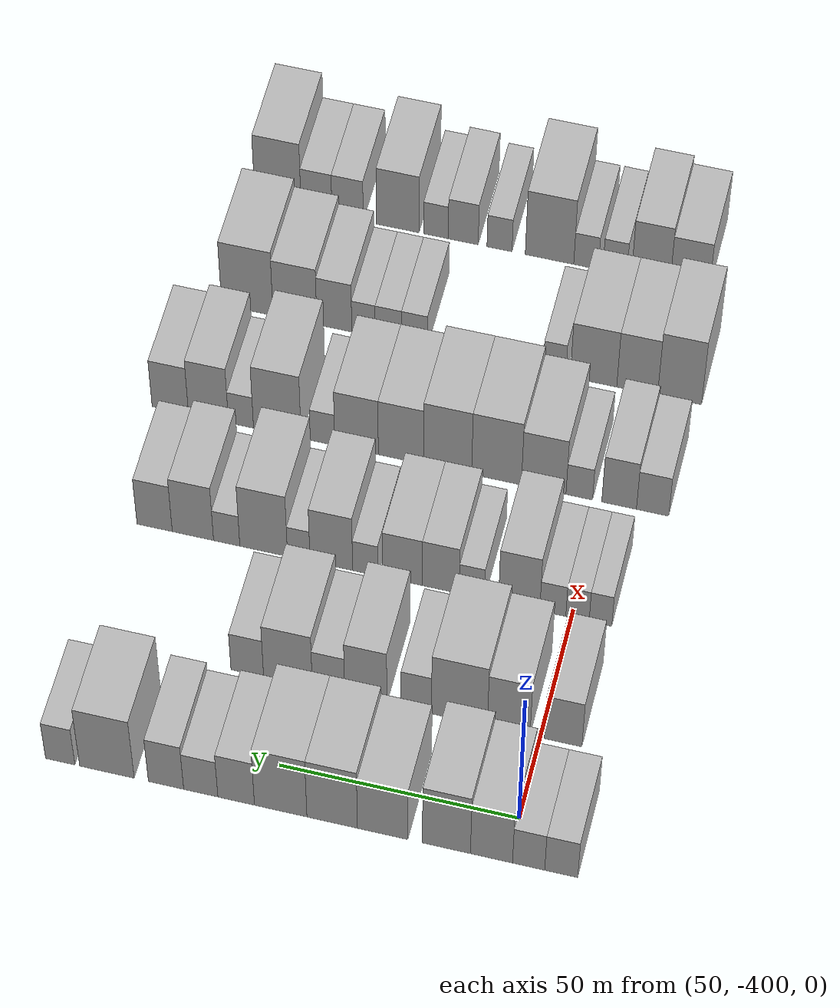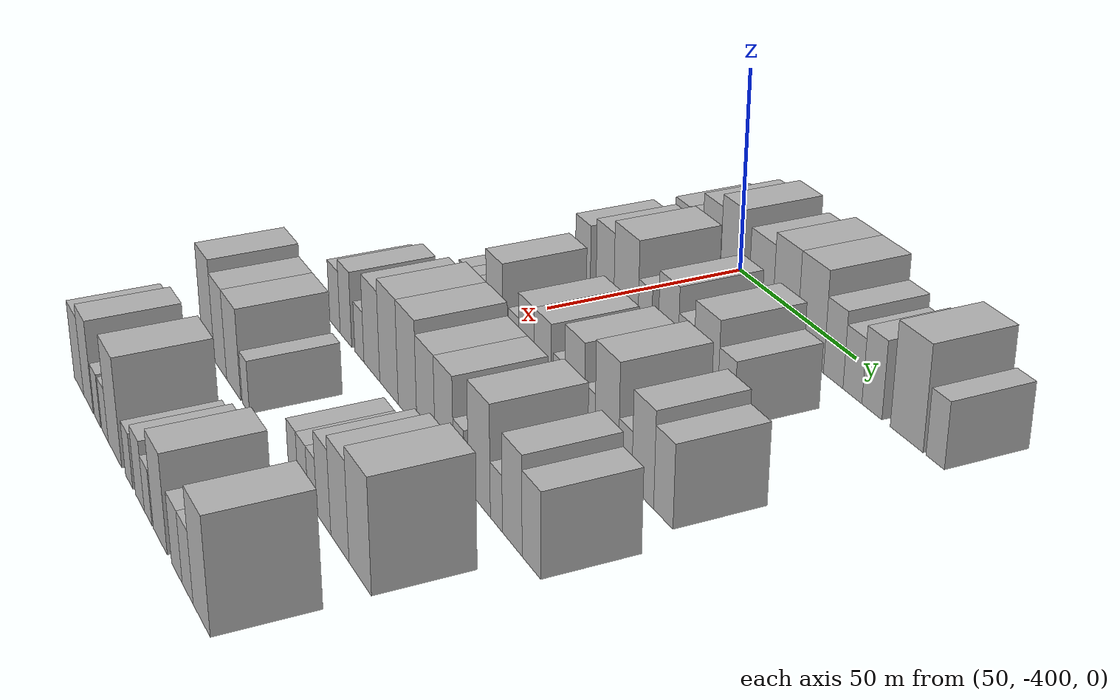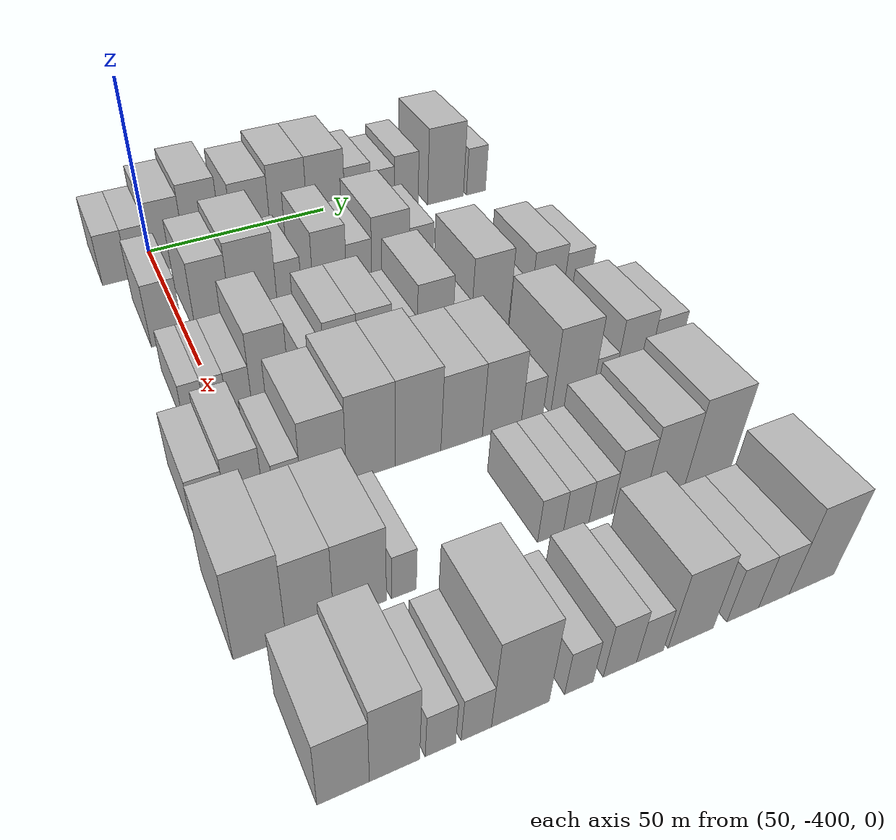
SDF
<sdf version="1.6">
 <world name="default">
  <model name="building_12">
   <static>1</static>
   <pose>50.0000 -411.0119 0 0.000000 0.000000 0.000000</pose>
   <link name="link">
    <pose>0 0 7.50 0 0 0</pose>
    <collision name="collision"><geometry><box><size>20.0000 6.7943 15.0000</size></box></geometry></collision>
    <visual name="visual">
     <cast_shadows>0</cast_shadows>
     <geometry><box><size>20.0000 6.7943 15.0000</size></box></geometry>
     <material>
      <script>
       <uri>model://HANNAS_wall/materials/scripts</uri>
       <uri>model://HANNAS_wall/materials/textures</uri>
       <name>vrc/HANNAS_wall</name>
      </script>
     </material>
    </visual>
   </link>
  </model>
  <model name="building_13">
   <static>1</static>
   <pose>50.0000 -404.2988 0 0.000000 0.000000 0.000000</pose>
   <link name="link">
    <pose>0 0 7.50 0 0 0</pose>
    <collision name="collision"><geometry><box><size>20.0000 6.6318 15.0000</size></box></geometry></collision>
    <visual name="visual">
     <cast_shadows>0</cast_shadows>
     <geometry><box><size>20.0000 6.6318 15.0000</size></box></geometry>
     <material>
      <script>
       <uri>model://HANNAS_wall/materials/scripts</uri>
       <uri>model://HANNAS_wall/materials/textures</uri>
       <name>vrc/HANNAS_wall</name>
      </script>
     </material>
    </visual>
   </link>
  </model>
  <model name="building_14">
   <static>1</static>
   <pose>50.0000 -396.6401 0 0.000000 0.000000 0.000000</pose>
   <link name="link">
    <pose>0 0 10.50 0 0 0</pose>
    <collision name="collision"><geometry><box><size>20.0000 8.6857 21.0000</size></box></geometry></collision>
    <visual name="visual">
     <cast_shadows>0</cast_shadows>
     <geometry><box><size>20.0000 8.6857 21.0000</size></box></geometry>
     <material>
      <script>
       <uri>model://HANNAS_wall/materials/scripts</uri>
       <uri>model://HANNAS_wall/materials/textures</uri>
       <name>vrc/HANNAS_wall</name>
      </script>
     </material>
    </visual>
   </link>
  </model>
  <model name="building_15">
   <static>1</static>
   <pose>50.0000 -387.3243 0 0.000000 0.000000 0.000000</pose>
   <link name="link">
    <pose>0 0 12.00 0 0 0</pose>
    <collision name="collision"><geometry><box><size>20.0000 9.9458 24.0000</size></box></geometry></collision>
    <visual name="visual">
     <cast_shadows>0</cast_shadows>
     <geometry><box><size>20.0000 9.9458 24.0000</size></box></geometry>
     <material>
      <script>
       <uri>model://HANNAS_wall/materials/scripts</uri>
       <uri>model://HANNAS_wall/materials/textures</uri>
       <name>vrc/HANNAS_wall</name>
      </script>
     </material>
    </visual>
   </link>
  </model>
  <model name="building_16">
   <static>1</static>
   <pose>50.0000 -374.1088 0 0.000000 0.000000 0.000000</pose>
   <link name="link">
    <pose>0 0 10.50 0 0 0</pose>
    <collision name="collision"><geometry><box><size>20.0000 10.4852 21.0000</size></box></geometry></collision>
    <visual name="visual">
     <cast_shadows>0</cast_shadows>
     <geometry><box><size>20.0000 10.4852 21.0000</size></box></geometry>
     <material>
      <script>
       <uri>model://HANNAS_wall/materials/scripts</uri>
       <uri>model://HANNAS_wall/materials/textures</uri>
       <name>vrc/HANNAS_wall</name>
      </script>
     </material>
    </visual>
   </link>
  </model>
  <model name="building_17">
   <static>1</static>
   <pose>50.0000 -363.6020 0 0.000000 0.000000 0.000000</pose>
   <link name="link">
    <pose>0 0 12.00 0 0 0</pose>
    <collision name="collision"><geometry><box><size>20.0000 10.5284 24.0000</size></box></geometry></collision>
    <visual name="visual">
     <cast_shadows>0</cast_shadows>
     <geometry><box><size>20.0000 10.5284 24.0000</size></box></geometry>
     <material>
      <script>
       <uri>model://HANNAS_wall/materials/scripts</uri>
       <uri>model://HANNAS_wall/materials/textures</uri>
       <name>vrc/HANNAS_wall</name>
      </script>
     </material>
    </visual>
   </link>
  </model>
  <model name="building_18">
   <static>1</static>
   <pose>50.0000 -352.8540 0 0.000000 0.000000 0.000000</pose>
   <link name="link">
    <pose>0 0 12.00 0 0 0</pose>
    <collision name="collision"><geometry><box><size>20.0000 10.9676 24.0000</size></box></geometry></collision>
    <visual name="visual">
     <cast_shadows>0</cast_shadows>
     <geometry><box><size>20.0000 10.9676 24.0000</size></box></geometry>
     <material>
      <script>
       <uri>model://HANNAS_wall/materials/scripts</uri>
       <uri>model://HANNAS_wall/materials/textures</uri>
       <name>vrc/HANNAS_wall</name>
      </script>
     </material>
    </visual>
   </link>
  </model>
  <model name="building_19">
   <static>1</static>
   <pose>50.0000 -343.5265 0 0.000000 0.000000 0.000000</pose>
   <link name="link">
    <pose>0 0 9.00 0 0 0</pose>
    <collision name="collision"><geometry><box><size>20.0000 7.6874 18.0000</size></box></geometry></collision>
    <visual name="visual">
     <cast_shadows>0</cast_shadows>
     <geometry><box><size>20.0000 7.6874 18.0000</size></box></geometry>
     <material>
      <script>
       <uri>model://HANNAS_wall/materials/scripts</uri>
       <uri>model://HANNAS_wall/materials/textures</uri>
       <name>vrc/HANNAS_wall</name>
      </script>
     </material>
    </visual>
   </link>
  </model>
  <model name="building_20">
   <static>1</static>
   <pose>50.0000 -336.0874 0 0.000000 0.000000 0.000000</pose>
   <link name="link">
    <pose>0 0 7.50 0 0 0</pose>
    <collision name="collision"><geometry><box><size>20.0000 7.1907 15.0000</size></box></geometry></collision>
    <visual name="visual">
     <cast_shadows>0</cast_shadows>
     <geometry><box><size>20.0000 7.1907 15.0000</size></box></geometry>
     <material>
      <script>
       <uri>model://HANNAS_wall/materials/scripts</uri>
       <uri>model://HANNAS_wall/materials/textures</uri>
       <name>vrc/HANNAS_wall</name>
      </script>
     </material>
    </visual>
   </link>
  </model>
  <model name="building_21">
   <static>1</static>
   <pose>50.0000 -328.7805 0 0.000000 0.000000 0.000000</pose>
   <link name="link">
    <pose>0 0 9.00 0 0 0</pose>
    <collision name="collision"><geometry><box><size>20.0000 7.4230 18.0000</size></box></geometry></collision>
    <visual name="visual">
     <cast_shadows>0</cast_shadows>
     <geometry><box><size>20.0000 7.4230 18.0000</size></box></geometry>
     <material>
      <script>
       <uri>model://HANNAS_wall/materials/scripts</uri>
       <uri>model://HANNAS_wall/materials/textures</uri>
       <name>vrc/HANNAS_wall</name>
      </script>
     </material>
    </visual>
   </link>
  </model>
  <model name="building_22">
   <static>1</static>
   <pose>50.0000 -316.2977 0 0.000000 0.000000 0.000000</pose>
   <link name="link">
    <pose>0 0 12.00 0 0 0</pose>
    <collision name="collision"><geometry><box><size>20.0000 11.5427 24.0000</size></box></geometry></collision>
    <visual name="visual">
     <cast_shadows>0</cast_shadows>
     <geometry><box><size>20.0000 11.5427 24.0000</size></box></geometry>
     <material>
      <script>
       <uri>model://HANNAS_wall/materials/scripts</uri>
       <uri>model://HANNAS_wall/materials/textures</uri>
       <name>vrc/HANNAS_wall</name>
      </script>
     </material>
    </visual>
   </link>
  </model>
  <model name="building_23">
   <static>1</static>
   <pose>50.0000 -306.4154 0 0.000000 0.000000 0.000000</pose>
   <link name="link">
    <pose>0 0 7.50 0 0 0</pose>
    <collision name="collision"><geometry><box><size>20.0000 6.2219 15.0000</size></box></geometry></collision>
    <visual name="visual">
     <cast_shadows>0</cast_shadows>
     <geometry><box><size>20.0000 6.2219 15.0000</size></box></geometry>
     <material>
      <script>
       <uri>model://HANNAS_wall/materials/scripts</uri>
       <uri>model://HANNAS_wall/materials/textures</uri>
       <name>vrc/HANNAS_wall</name>
      </script>
     </material>
    </visual>
   </link>
  </model>
  <model name="building_138">
   <static>1</static>
   <pose>79.0000 -404.8207 0 0.000000 0.000000 0.000000</pose>
   <link name="link">
    <pose>0 0 9.00 0 0 0</pose>
    <collision name="collision"><geometry><box><size>20.0000 7.8745 18.0000</size></box></geometry></collision>
    <visual name="visual">
     <cast_shadows>0</cast_shadows>
     <geometry><box><size>20.0000 7.8745 18.0000</size></box></geometry>
     <material>
      <script>
       <uri>model://HANNAS_wall/materials/scripts</uri>
       <uri>model://HANNAS_wall/materials/textures</uri>
       <name>vrc/HANNAS_wall</name>
      </script>
     </material>
    </visual>
   </link>
  </model>
  <model name="building_139">
   <static>1</static>
   <pose>79.0000 -393.3997 0 0.000000 0.000000 0.000000</pose>
   <link name="link">
    <pose>0 0 10.50 0 0 0</pose>
    <collision name="collision"><geometry><box><size>20.0000 8.9675 21.0000</size></box></geometry></collision>
    <visual name="visual">
     <cast_shadows>0</cast_shadows>
     <geometry><box><size>20.0000 8.9675 21.0000</size></box></geometry>
     <material>
      <script>
       <uri>model://HANNAS_wall/materials/scripts</uri>
       <uri>model://HANNAS_wall/materials/textures</uri>
       <name>vrc/HANNAS_wall</name>
      </script>
     </material>
    </visual>
   </link>
  </model>
  <model name="building_140">
   <static>1</static>
   <pose>79.0000 -383.0136 0 0.000000 0.000000 0.000000</pose>
   <link name="link">
    <pose>0 0 12.00 0 0 0</pose>
    <collision name="collision"><geometry><box><size>20.0000 11.8047 24.0000</size></box></geometry></collision>
    <visual name="visual">
     <cast_shadows>0</cast_shadows>
     <geometry><box><size>20.0000 11.8047 24.0000</size></box></geometry>
     <material>
      <script>
       <uri>model://HANNAS_wall/materials/scripts</uri>
       <uri>model://HANNAS_wall/materials/textures</uri>
       <name>vrc/HANNAS_wall</name>
      </script>
     </material>
    </visual>
   </link>
  </model>
  <model name="building_141">
   <static>1</static>
   <pose>79.0000 -373.9054 0 0.000000 0.000000 0.000000</pose>
   <link name="link">
    <pose>0 0 7.50 0 0 0</pose>
    <collision name="collision"><geometry><box><size>20.0000 6.4116 15.0000</size></box></geometry></collision>
    <visual name="visual">
     <cast_shadows>0</cast_shadows>
     <geometry><box><size>20.0000 6.4116 15.0000</size></box></geometry>
     <material>
      <script>
       <uri>model://HANNAS_wall/materials/scripts</uri>
       <uri>model://HANNAS_wall/materials/textures</uri>
       <name>vrc/HANNAS_wall</name>
      </script>
     </material>
    </visual>
   </link>
  </model>
  <model name="building_142">
   <static>1</static>
   <pose>79.0000 -363.2345 0 0.000000 0.000000 0.000000</pose>
   <link name="link">
    <pose>0 0 10.50 0 0 0</pose>
    <collision name="collision"><geometry><box><size>20.0000 8.9304 21.0000</size></box></geometry></collision>
    <visual name="visual">
     <cast_shadows>0</cast_shadows>
     <geometry><box><size>20.0000 8.9304 21.0000</size></box></geometry>
     <material>
      <script>
       <uri>model://HANNAS_wall/materials/scripts</uri>
       <uri>model://HANNAS_wall/materials/textures</uri>
       <name>vrc/HANNAS_wall</name>
      </script>
     </material>
    </visual>
   </link>
  </model>
  <model name="building_143">
   <static>1</static>
   <pose>79.0000 -355.3321 0 0.000000 0.000000 0.000000</pose>
   <link name="link">
    <pose>0 0 7.50 0 0 0</pose>
    <collision name="collision"><geometry><box><size>20.0000 6.8745 15.0000</size></box></geometry></collision>
    <visual name="visual">
     <cast_shadows>0</cast_shadows>
     <geometry><box><size>20.0000 6.8745 15.0000</size></box></geometry>
     <material>
      <script>
       <uri>model://HANNAS_wall/materials/scripts</uri>
       <uri>model://HANNAS_wall/materials/textures</uri>
       <name>vrc/HANNAS_wall</name>
      </script>
     </material>
    </visual>
   </link>
  </model>
  <model name="building_144">
   <static>1</static>
   <pose>79.0000 -346.7021 0 0.000000 0.000000 0.000000</pose>
   <link name="link">
    <pose>0 0 10.50 0 0 0</pose>
    <collision name="collision"><geometry><box><size>20.0000 10.3855 21.0000</size></box></geometry></collision>
    <visual name="visual">
     <cast_shadows>0</cast_shadows>
     <geometry><box><size>20.0000 10.3855 21.0000</size></box></geometry>
     <material>
      <script>
       <uri>model://HANNAS_wall/materials/scripts</uri>
       <uri>model://HANNAS_wall/materials/textures</uri>
       <name>vrc/HANNAS_wall</name>
      </script>
     </material>
    </visual>
   </link>
  </model>
  <model name="building_145">
   <static>1</static>
   <pose>79.0000 -338.0253 0 0.000000 0.000000 0.000000</pose>
   <link name="link">
    <pose>0 0 7.50 0 0 0</pose>
    <collision name="collision"><geometry><box><size>20.0000 6.9681 15.0000</size></box></geometry></collision>
    <visual name="visual">
     <cast_shadows>0</cast_shadows>
     <geometry><box><size>20.0000 6.9681 15.0000</size></box></geometry>
     <material>
      <script>
       <uri>model://HANNAS_wall/materials/scripts</uri>
       <uri>model://HANNAS_wall/materials/textures</uri>
       <name>vrc/HANNAS_wall</name>
      </script>
     </material>
    </visual>
   </link>
  </model>
  <model name="building_251">
   <static>1</static>
   <pose>108.0000 -406.1976 0 0.000000 0.000000 0.000000</pose>
   <link name="link">
    <pose>0 0 6.00 0 0 0</pose>
    <collision name="collision"><geometry><box><size>20.0000 4.8147 12.0000</size></box></geometry></collision>
    <visual name="visual">
     <cast_shadows>0</cast_shadows>
     <geometry><box><size>20.0000 4.8147 12.0000</size></box></geometry>
     <material>
      <script>
       <uri>model://HANNAS_wall/materials/scripts</uri>
       <uri>model://HANNAS_wall/materials/textures</uri>
       <name>vrc/HANNAS_wall</name>
      </script>
     </material>
    </visual>
   </link>
  </model>
  <model name="building_252">
   <static>1</static>
   <pose>108.0000 -401.3048 0 0.000000 0.000000 0.000000</pose>
   <link name="link">
    <pose>0 0 6.00 0 0 0</pose>
    <collision name="collision"><geometry><box><size>20.0000 4.9708 12.0000</size></box></geometry></collision>
    <visual name="visual">
     <cast_shadows>0</cast_shadows>
     <geometry><box><size>20.0000 4.9708 12.0000</size></box></geometry>
     <material>
      <script>
       <uri>model://HANNAS_wall/materials/scripts</uri>
       <uri>model://HANNAS_wall/materials/textures</uri>
       <name>vrc/HANNAS_wall</name>
      </script>
     </material>
    </visual>
   </link>
  </model>
  <model name="building_253">
   <static>1</static>
   <pose>108.0000 -396.0390 0 0.000000 0.000000 0.000000</pose>
   <link name="link">
    <pose>0 0 6.00 0 0 0</pose>
    <collision name="collision"><geometry><box><size>20.0000 5.5609 12.0000</size></box></geometry></collision>
    <visual name="visual">
     <cast_shadows>0</cast_shadows>
     <geometry><box><size>20.0000 5.5609 12.0000</size></box></geometry>
     <material>
      <script>
       <uri>model://HANNAS_wall/materials/scripts</uri>
       <uri>model://HANNAS_wall/materials/textures</uri>
       <name>vrc/HANNAS_wall</name>
      </script>
     </material>
    </visual>
   </link>
  </model>
  <model name="building_254">
   <static>1</static>
   <pose>108.0000 -388.8433 0 0.000000 0.000000 0.000000</pose>
   <link name="link">
    <pose>0 0 10.50 0 0 0</pose>
    <collision name="collision"><geometry><box><size>20.0000 8.8304 21.0000</size></box></geometry></collision>
    <visual name="visual">
     <cast_shadows>0</cast_shadows>
     <geometry><box><size>20.0000 8.8304 21.0000</size></box></geometry>
     <material>
      <script>
       <uri>model://HANNAS_wall/materials/scripts</uri>
       <uri>model://HANNAS_wall/materials/textures</uri>
       <name>vrc/HANNAS_wall</name>
      </script>
     </material>
    </visual>
   </link>
  </model>
  <model name="building_255">
   <static>1</static>
   <pose>108.0000 -378.7114 0 0.000000 0.000000 0.000000</pose>
   <link name="link">
    <pose>0 0 6.00 0 0 0</pose>
    <collision name="collision"><geometry><box><size>20.0000 5.4335 12.0000</size></box></geometry></collision>
    <visual name="visual">
     <cast_shadows>0</cast_shadows>
     <geometry><box><size>20.0000 5.4335 12.0000</size></box></geometry>
     <material>
      <script>
       <uri>model://HANNAS_wall/materials/scripts</uri>
       <uri>model://HANNAS_wall/materials/textures</uri>
       <name>vrc/HANNAS_wall</name>
      </script>
     </material>
    </visual>
   </link>
  </model>
  <model name="building_256">
   <static>1</static>
   <pose>108.0000 -372.0160 0 0.000000 0.000000 0.000000</pose>
   <link name="link">
    <pose>0 0 9.00 0 0 0</pose>
    <collision name="collision"><geometry><box><size>20.0000 7.9572 18.0000</size></box></geometry></collision>
    <visual name="visual">
     <cast_shadows>0</cast_shadows>
     <geometry><box><size>20.0000 7.9572 18.0000</size></box></geometry>
     <material>
      <script>
       <uri>model://HANNAS_wall/materials/scripts</uri>
       <uri>model://HANNAS_wall/materials/textures</uri>
       <name>vrc/HANNAS_wall</name>
      </script>
     </material>
    </visual>
   </link>
  </model>
  <model name="building_257">
   <static>1</static>
   <pose>108.0000 -363.7470 0 0.000000 0.000000 0.000000</pose>
   <link name="link">
    <pose>0 0 9.00 0 0 0</pose>
    <collision name="collision"><geometry><box><size>20.0000 8.5809 18.0000</size></box></geometry></collision>
    <visual name="visual">
     <cast_shadows>0</cast_shadows>
     <geometry><box><size>20.0000 8.5809 18.0000</size></box></geometry>
     <material>
      <script>
       <uri>model://HANNAS_wall/materials/scripts</uri>
       <uri>model://HANNAS_wall/materials/textures</uri>
       <name>vrc/HANNAS_wall</name>
      </script>
     </material>
    </visual>
   </link>
  </model>
  <model name="building_258">
   <static>1</static>
   <pose>108.0000 -355.7465 0 0.000000 0.000000 0.000000</pose>
   <link name="link">
    <pose>0 0 6.00 0 0 0</pose>
    <collision name="collision"><geometry><box><size>20.0000 5.4200 12.0000</size></box></geometry></collision>
    <visual name="visual">
     <cast_shadows>0</cast_shadows>
     <geometry><box><size>20.0000 5.4200 12.0000</size></box></geometry>
     <material>
      <script>
       <uri>model://HANNAS_wall/materials/scripts</uri>
       <uri>model://HANNAS_wall/materials/textures</uri>
       <name>vrc/HANNAS_wall</name>
      </script>
     </material>
    </visual>
   </link>
  </model>
  <model name="building_259">
   <static>1</static>
   <pose>108.0000 -348.4255 0 0.000000 0.000000 0.000000</pose>
   <link name="link">
    <pose>0 0 10.50 0 0 0</pose>
    <collision name="collision"><geometry><box><size>20.0000 9.2221 21.0000</size></box></geometry></collision>
    <visual name="visual">
     <cast_shadows>0</cast_shadows>
     <geometry><box><size>20.0000 9.2221 21.0000</size></box></geometry>
     <material>
      <script>
       <uri>model://HANNAS_wall/materials/scripts</uri>
       <uri>model://HANNAS_wall/materials/textures</uri>
       <name>vrc/HANNAS_wall</name>
      </script>
     </material>
    </visual>
   </link>
  </model>
  <model name="building_260">
   <static>1</static>
   <pose>108.0000 -341.3754 0 0.000000 0.000000 0.000000</pose>
   <link name="link">
    <pose>0 0 6.00 0 0 0</pose>
    <collision name="collision"><geometry><box><size>20.0000 4.8781 12.0000</size></box></geometry></collision>
    <visual name="visual">
     <cast_shadows>0</cast_shadows>
     <geometry><box><size>20.0000 4.8781 12.0000</size></box></geometry>
     <material>
      <script>
       <uri>model://HANNAS_wall/materials/scripts</uri>
       <uri>model://HANNAS_wall/materials/textures</uri>
       <name>vrc/HANNAS_wall</name>
      </script>
     </material>
    </visual>
   </link>
  </model>
  <model name="building_261">
   <static>1</static>
   <pose>108.0000 -333.7498 0 0.000000 0.000000 0.000000</pose>
   <link name="link">
    <pose>0 0 12.00 0 0 0</pose>
    <collision name="collision"><geometry><box><size>20.0000 10.3731 24.0000</size></box></geometry></collision>
    <visual name="visual">
     <cast_shadows>0</cast_shadows>
     <geometry><box><size>20.0000 10.3731 24.0000</size></box></geometry>
     <material>
      <script>
       <uri>model://HANNAS_wall/materials/scripts</uri>
       <uri>model://HANNAS_wall/materials/textures</uri>
       <name>vrc/HANNAS_wall</name>
      </script>
     </material>
    </visual>
   </link>
  </model>
  <model name="building_262">
   <static>1</static>
   <pose>108.0000 -325.6990 0 0.000000 0.000000 0.000000</pose>
   <link name="link">
    <pose>0 0 6.00 0 0 0</pose>
    <collision name="collision"><geometry><box><size>20.0000 5.7284 12.0000</size></box></geometry></collision>
    <visual name="visual">
     <cast_shadows>0</cast_shadows>
     <geometry><box><size>20.0000 5.7284 12.0000</size></box></geometry>
     <material>
      <script>
       <uri>model://HANNAS_wall/materials/scripts</uri>
       <uri>model://HANNAS_wall/materials/textures</uri>
       <name>vrc/HANNAS_wall</name>
      </script>
     </material>
    </visual>
   </link>
  </model>
  <model name="building_263">
   <static>1</static>
   <pose>108.0000 -318.3261 0 0.000000 0.000000 0.000000</pose>
   <link name="link">
    <pose>0 0 10.50 0 0 0</pose>
    <collision name="collision"><geometry><box><size>20.0000 9.0173 21.0000</size></box></geometry></collision>
    <visual name="visual">
     <cast_shadows>0</cast_shadows>
     <geometry><box><size>20.0000 9.0173 21.0000</size></box></geometry>
     <material>
      <script>
       <uri>model://HANNAS_wall/materials/scripts</uri>
       <uri>model://HANNAS_wall/materials/textures</uri>
       <name>vrc/HANNAS_wall</name>
      </script>
     </material>
    </visual>
   </link>
  </model>
  <model name="building_264">
   <static>1</static>
   <pose>108.0000 -309.9654 0 0.000000 0.000000 0.000000</pose>
   <link name="link">
    <pose>0 0 9.00 0 0 0</pose>
    <collision name="collision"><geometry><box><size>20.0000 7.7040 18.0000</size></box></geometry></collision>
    <visual name="visual">
     <cast_shadows>0</cast_shadows>
     <geometry><box><size>20.0000 7.7040 18.0000</size></box></geometry>
     <material>
      <script>
       <uri>model://HANNAS_wall/materials/scripts</uri>
       <uri>model://HANNAS_wall/materials/textures</uri>
       <name>vrc/HANNAS_wall</name>
      </script>
     </material>
    </visual>
   </link>
  </model>
  <model name="building_360">
   <static>1</static>
   <pose>137.0000 -411.0439 0 0.000000 0.000000 0.000000</pose>
   <link name="link">
    <pose>0 0 7.50 0 0 0</pose>
    <collision name="collision"><geometry><box><size>20.0000 6.9894 15.0000</size></box></geometry></collision>
    <visual name="visual">
     <cast_shadows>0</cast_shadows>
     <geometry><box><size>20.0000 6.9894 15.0000</size></box></geometry>
     <material>
      <script>
       <uri>model://HANNAS_wall/materials/scripts</uri>
       <uri>model://HANNAS_wall/materials/textures</uri>
       <name>vrc/HANNAS_wall</name>
      </script>
     </material>
    </visual>
   </link>
  </model>
  <model name="building_361">
   <static>1</static>
   <pose>137.0000 -403.8010 0 0.000000 0.000000 0.000000</pose>
   <link name="link">
    <pose>0 0 9.00 0 0 0</pose>
    <collision name="collision"><geometry><box><size>20.0000 7.4965 18.0000</size></box></geometry></collision>
    <visual name="visual">
     <cast_shadows>0</cast_shadows>
     <geometry><box><size>20.0000 7.4965 18.0000</size></box></geometry>
     <material>
      <script>
       <uri>model://HANNAS_wall/materials/scripts</uri>
       <uri>model://HANNAS_wall/materials/textures</uri>
       <name>vrc/HANNAS_wall</name>
      </script>
     </material>
    </visual>
   </link>
  </model>
  <model name="building_362">
   <static>1</static>
   <pose>137.0000 -395.1707 0 0.000000 0.000000 0.000000</pose>
   <link name="link">
    <pose>0 0 6.00 0 0 0</pose>
    <collision name="collision"><geometry><box><size>20.0000 5.7639 12.0000</size></box></geometry></collision>
    <visual name="visual">
     <cast_shadows>0</cast_shadows>
     <geometry><box><size>20.0000 5.7639 12.0000</size></box></geometry>
     <material>
      <script>
       <uri>model://HANNAS_wall/materials/scripts</uri>
       <uri>model://HANNAS_wall/materials/textures</uri>
       <name>vrc/HANNAS_wall</name>
      </script>
     </material>
    </visual>
   </link>
  </model>
  <model name="building_363">
   <static>1</static>
   <pose>137.0000 -387.4341 0 0.000000 0.000000 0.000000</pose>
   <link name="link">
    <pose>0 0 10.50 0 0 0</pose>
    <collision name="collision"><geometry><box><size>20.0000 9.7094 21.0000</size></box></geometry></collision>
    <visual name="visual">
     <cast_shadows>0</cast_shadows>
     <geometry><box><size>20.0000 9.7094 21.0000</size></box></geometry>
     <material>
      <script>
       <uri>model://HANNAS_wall/materials/scripts</uri>
       <uri>model://HANNAS_wall/materials/textures</uri>
       <name>vrc/HANNAS_wall</name>
      </script>
     </material>
    </visual>
   </link>
  </model>
  <model name="building_364">
   <static>1</static>
   <pose>137.0000 -377.1442 0 0.000000 0.000000 0.000000</pose>
   <link name="link">
    <pose>0 0 12.00 0 0 0</pose>
    <collision name="collision"><geometry><box><size>20.0000 10.8703 24.0000</size></box></geometry></collision>
    <visual name="visual">
     <cast_shadows>0</cast_shadows>
     <geometry><box><size>20.0000 10.8703 24.0000</size></box></geometry>
     <material>
      <script>
       <uri>model://HANNAS_wall/materials/scripts</uri>
       <uri>model://HANNAS_wall/materials/textures</uri>
       <name>vrc/HANNAS_wall</name>
      </script>
     </material>
    </visual>
   </link>
  </model>
  <model name="building_365">
   <static>1</static>
   <pose>137.0000 -366.4379 0 0.000000 0.000000 0.000000</pose>
   <link name="link">
    <pose>0 0 12.00 0 0 0</pose>
    <collision name="collision"><geometry><box><size>20.0000 10.5423 24.0000</size></box></geometry></collision>
    <visual name="visual">
     <cast_shadows>0</cast_shadows>
     <geometry><box><size>20.0000 10.5423 24.0000</size></box></geometry>
     <material>
      <script>
       <uri>model://HANNAS_wall/materials/scripts</uri>
       <uri>model://HANNAS_wall/materials/textures</uri>
       <name>vrc/HANNAS_wall</name>
      </script>
     </material>
    </visual>
   </link>
  </model>
  <model name="building_366">
   <static>1</static>
   <pose>137.0000 -356.2213 0 0.000000 0.000000 0.000000</pose>
   <link name="link">
    <pose>0 0 10.50 0 0 0</pose>
    <collision name="collision"><geometry><box><size>20.0000 9.8908 21.0000</size></box></geometry></collision>
    <visual name="visual">
     <cast_shadows>0</cast_shadows>
     <geometry><box><size>20.0000 9.8908 21.0000</size></box></geometry>
     <material>
      <script>
       <uri>model://HANNAS_wall/materials/scripts</uri>
       <uri>model://HANNAS_wall/materials/textures</uri>
       <name>vrc/HANNAS_wall</name>
      </script>
     </material>
    </visual>
   </link>
  </model>
  <model name="building_367">
   <static>1</static>
   <pose>137.0000 -346.4849 0 0.000000 0.000000 0.000000</pose>
   <link name="link">
    <pose>0 0 10.50 0 0 0</pose>
    <collision name="collision"><geometry><box><size>20.0000 9.5820 21.0000</size></box></geometry></collision>
    <visual name="visual">
     <cast_shadows>0</cast_shadows>
     <geometry><box><size>20.0000 9.5820 21.0000</size></box></geometry>
     <material>
      <script>
       <uri>model://HANNAS_wall/materials/scripts</uri>
       <uri>model://HANNAS_wall/materials/textures</uri>
       <name>vrc/HANNAS_wall</name>
      </script>
     </material>
    </visual>
   </link>
  </model>
  <model name="building_368">
   <static>1</static>
   <pose>137.0000 -338.9801 0 0.000000 0.000000 0.000000</pose>
   <link name="link">
    <pose>0 0 6.00 0 0 0</pose>
    <collision name="collision"><geometry><box><size>20.0000 5.4277 12.0000</size></box></geometry></collision>
    <visual name="visual">
     <cast_shadows>0</cast_shadows>
     <geometry><box><size>20.0000 5.4277 12.0000</size></box></geometry>
     <material>
      <script>
       <uri>model://HANNAS_wall/materials/scripts</uri>
       <uri>model://HANNAS_wall/materials/textures</uri>
       <name>vrc/HANNAS_wall</name>
      </script>
     </material>
    </visual>
   </link>
  </model>
  <model name="building_369">
   <static>1</static>
   <pose>137.0000 -329.0009 0 0.000000 0.000000 0.000000</pose>
   <link name="link">
    <pose>0 0 12.00 0 0 0</pose>
    <collision name="collision"><geometry><box><size>20.0000 10.5307 24.0000</size></box></geometry></collision>
    <visual name="visual">
     <cast_shadows>0</cast_shadows>
     <geometry><box><size>20.0000 10.5307 24.0000</size></box></geometry>
     <material>
      <script>
       <uri>model://HANNAS_wall/materials/scripts</uri>
       <uri>model://HANNAS_wall/materials/textures</uri>
       <name>vrc/HANNAS_wall</name>
      </script>
     </material>
    </visual>
   </link>
  </model>
  <model name="building_370">
   <static>1</static>
   <pose>137.0000 -320.9546 0 0.000000 0.000000 0.000000</pose>
   <link name="link">
    <pose>0 0 6.00 0 0 0</pose>
    <collision name="collision"><geometry><box><size>20.0000 5.5618 12.0000</size></box></geometry></collision>
    <visual name="visual">
     <cast_shadows>0</cast_shadows>
     <geometry><box><size>20.0000 5.5618 12.0000</size></box></geometry>
     <material>
      <script>
       <uri>model://HANNAS_wall/materials/scripts</uri>
       <uri>model://HANNAS_wall/materials/textures</uri>
       <name>vrc/HANNAS_wall</name>
      </script>
     </material>
    </visual>
   </link>
  </model>
  <model name="building_371">
   <static>1</static>
   <pose>137.0000 -313.7371 0 0.000000 0.000000 0.000000</pose>
   <link name="link">
    <pose>0 0 10.50 0 0 0</pose>
    <collision name="collision"><geometry><box><size>20.0000 8.8732 21.0000</size></box></geometry></collision>
    <visual name="visual">
     <cast_shadows>0</cast_shadows>
     <geometry><box><size>20.0000 8.8732 21.0000</size></box></geometry>
     <material>
      <script>
       <uri>model://HANNAS_wall/materials/scripts</uri>
       <uri>model://HANNAS_wall/materials/textures</uri>
       <name>vrc/HANNAS_wall</name>
      </script>
     </material>
    </visual>
   </link>
  </model>
  <model name="building_372">
   <static>1</static>
   <pose>137.0000 -305.2493 0 0.000000 0.000000 0.000000</pose>
   <link name="link">
    <pose>0 0 9.00 0 0 0</pose>
    <collision name="collision"><geometry><box><size>20.0000 8.1023 18.0000</size></box></geometry></collision>
    <visual name="visual">
     <cast_shadows>0</cast_shadows>
     <geometry><box><size>20.0000 8.1023 18.0000</size></box></geometry>
     <material>
      <script>
       <uri>model://HANNAS_wall/materials/scripts</uri>
       <uri>model://HANNAS_wall/materials/textures</uri>
       <name>vrc/HANNAS_wall</name>
      </script>
     </material>
    </visual>
   </link>
  </model>
  <model name="building_471">
   <static>1</static>
   <pose>166.0000 -410.7317 0 0.000000 0.000000 0.000000</pose>
   <link name="link">
    <pose>0 0 12.00 0 0 0</pose>
    <collision name="collision"><geometry><box><size>20.0000 9.6630 24.0000</size></box></geometry></collision>
    <visual name="visual">
     <cast_shadows>0</cast_shadows>
     <geometry><box><size>20.0000 9.6630 24.0000</size></box></geometry>
     <material>
      <script>
       <uri>model://HANNAS_wall/materials/scripts</uri>
       <uri>model://HANNAS_wall/materials/textures</uri>
       <name>vrc/HANNAS_wall</name>
      </script>
     </material>
    </visual>
   </link>
  </model>
  <model name="building_472">
   <static>1</static>
   <pose>166.0000 -401.4098 0 0.000000 0.000000 0.000000</pose>
   <link name="link">
    <pose>0 0 10.50 0 0 0</pose>
    <collision name="collision"><geometry><box><size>20.0000 8.9807 21.0000</size></box></geometry></collision>
    <visual name="visual">
     <cast_shadows>0</cast_shadows>
     <geometry><box><size>20.0000 8.9807 21.0000</size></box></geometry>
     <material>
      <script>
       <uri>model://HANNAS_wall/materials/scripts</uri>
       <uri>model://HANNAS_wall/materials/textures</uri>
       <name>vrc/HANNAS_wall</name>
      </script>
     </material>
    </visual>
   </link>
  </model>
  <model name="building_473">
   <static>1</static>
   <pose>166.0000 -391.7960 0 0.000000 0.000000 0.000000</pose>
   <link name="link">
    <pose>0 0 10.50 0 0 0</pose>
    <collision name="collision"><geometry><box><size>20.0000 10.2469 21.0000</size></box></geometry></collision>
    <visual name="visual">
     <cast_shadows>0</cast_shadows>
     <geometry><box><size>20.0000 10.2469 21.0000</size></box></geometry>
     <material>
      <script>
       <uri>model://HANNAS_wall/materials/scripts</uri>
       <uri>model://HANNAS_wall/materials/textures</uri>
       <name>vrc/HANNAS_wall</name>
      </script>
     </material>
    </visual>
   </link>
  </model>
  <model name="building_474">
   <static>1</static>
   <pose>166.0000 -383.1662 0 0.000000 0.000000 0.000000</pose>
   <link name="link">
    <pose>0 0 6.00 0 0 0</pose>
    <collision name="collision"><geometry><box><size>20.0000 5.0128 12.0000</size></box></geometry></collision>
    <visual name="visual">
     <cast_shadows>0</cast_shadows>
     <geometry><box><size>20.0000 5.0128 12.0000</size></box></geometry>
     <material>
      <script>
       <uri>model://HANNAS_wall/materials/scripts</uri>
       <uri>model://HANNAS_wall/materials/textures</uri>
       <name>vrc/HANNAS_wall</name>
      </script>
     </material>
    </visual>
   </link>
  </model>
  <model name="building_475">
   <static>1</static>
   <pose>166.0000 -352.0200 0 0.000000 0.000000 0.000000</pose>
   <link name="link">
    <pose>0 0 6.00 0 0 0</pose>
    <collision name="collision"><geometry><box><size>20.0000 5.7599 12.0000</size></box></geometry></collision>
    <visual name="visual">
     <cast_shadows>0</cast_shadows>
     <geometry><box><size>20.0000 5.7599 12.0000</size></box></geometry>
     <material>
      <script>
       <uri>model://HANNAS_wall/materials/scripts</uri>
       <uri>model://HANNAS_wall/materials/textures</uri>
       <name>vrc/HANNAS_wall</name>
      </script>
     </material>
    </visual>
   </link>
  </model>
  <model name="building_476">
   <static>1</static>
   <pose>166.0000 -346.2103 0 0.000000 0.000000 0.000000</pose>
   <link name="link">
    <pose>0 0 6.00 0 0 0</pose>
    <collision name="collision"><geometry><box><size>20.0000 5.8594 12.0000</size></box></geometry></collision>
    <visual name="visual">
     <cast_shadows>0</cast_shadows>
     <geometry><box><size>20.0000 5.8594 12.0000</size></box></geometry>
     <material>
      <script>
       <uri>model://HANNAS_wall/materials/scripts</uri>
       <uri>model://HANNAS_wall/materials/textures</uri>
       <name>vrc/HANNAS_wall</name>
      </script>
     </material>
    </visual>
   </link>
  </model>
  <model name="building_477">
   <static>1</static>
   <pose>166.0000 -340.6486 0 0.000000 0.000000 0.000000</pose>
   <link name="link">
    <pose>0 0 6.00 0 0 0</pose>
    <collision name="collision"><geometry><box><size>20.0000 5.2640 12.0000</size></box></geometry></collision>
    <visual name="visual">
     <cast_shadows>0</cast_shadows>
     <geometry><box><size>20.0000 5.2640 12.0000</size></box></geometry>
     <material>
      <script>
       <uri>model://HANNAS_wall/materials/scripts</uri>
       <uri>model://HANNAS_wall/materials/textures</uri>
       <name>vrc/HANNAS_wall</name>
      </script>
     </material>
    </visual>
   </link>
  </model>
  <model name="building_478">
   <static>1</static>
   <pose>166.0000 -334.1049 0 0.000000 0.000000 0.000000</pose>
   <link name="link">
    <pose>0 0 9.00 0 0 0</pose>
    <collision name="collision"><geometry><box><size>20.0000 7.8234 18.0000</size></box></geometry></collision>
    <visual name="visual">
     <cast_shadows>0</cast_shadows>
     <geometry><box><size>20.0000 7.8234 18.0000</size></box></geometry>
     <material>
      <script>
       <uri>model://HANNAS_wall/materials/scripts</uri>
       <uri>model://HANNAS_wall/materials/textures</uri>
       <name>vrc/HANNAS_wall</name>
      </script>
     </material>
    </visual>
   </link>
  </model>
  <model name="building_479">
   <static>1</static>
   <pose>166.0000 -325.2538 0 0.000000 0.000000 0.000000</pose>
   <link name="link">
    <pose>0 0 10.50 0 0 0</pose>
    <collision name="collision"><geometry><box><size>20.0000 9.8790 21.0000</size></box></geometry></collision>
    <visual name="visual">
     <cast_shadows>0</cast_shadows>
     <geometry><box><size>20.0000 9.8790 21.0000</size></box></geometry>
     <material>
      <script>
       <uri>model://HANNAS_wall/materials/scripts</uri>
       <uri>model://HANNAS_wall/materials/textures</uri>
       <name>vrc/HANNAS_wall</name>
      </script>
     </material>
    </visual>
   </link>
  </model>
  <model name="building_480">
   <static>1</static>
   <pose>166.0000 -314.5226 0 0.000000 0.000000 0.000000</pose>
   <link name="link">
    <pose>0 0 12.00 0 0 0</pose>
    <collision name="collision"><geometry><box><size>20.0000 11.5834 24.0000</size></box></geometry></collision>
    <visual name="visual">
     <cast_shadows>0</cast_shadows>
     <geometry><box><size>20.0000 11.5834 24.0000</size></box></geometry>
     <material>
      <script>
       <uri>model://HANNAS_wall/materials/scripts</uri>
       <uri>model://HANNAS_wall/materials/textures</uri>
       <name>vrc/HANNAS_wall</name>
      </script>
     </material>
    </visual>
   </link>
  </model>
  <model name="building_587">
   <static>1</static>
   <pose>195.0000 -406.8540 0 0.000000 0.000000 0.000000</pose>
   <link name="link">
    <pose>0 0 9.00 0 0 0</pose>
    <collision name="collision"><geometry><box><size>20.0000 8.7454 18.0000</size></box></geometry></collision>
    <visual name="visual">
     <cast_shadows>0</cast_shadows>
     <geometry><box><size>20.0000 8.7454 18.0000</size></box></geometry>
     <material>
      <script>
       <uri>model://HANNAS_wall/materials/scripts</uri>
       <uri>model://HANNAS_wall/materials/textures</uri>
       <name>vrc/HANNAS_wall</name>
      </script>
     </material>
    </visual>
   </link>
  </model>
  <model name="building_588">
   <static>1</static>
   <pose>195.0000 -398.1603 0 0.000000 0.000000 0.000000</pose>
   <link name="link">
    <pose>0 0 10.50 0 0 0</pose>
    <collision name="collision"><geometry><box><size>20.0000 8.6420 21.0000</size></box></geometry></collision>
    <visual name="visual">
     <cast_shadows>0</cast_shadows>
     <geometry><box><size>20.0000 8.6420 21.0000</size></box></geometry>
     <material>
      <script>
       <uri>model://HANNAS_wall/materials/scripts</uri>
       <uri>model://HANNAS_wall/materials/textures</uri>
       <name>vrc/HANNAS_wall</name>
      </script>
     </material>
    </visual>
   </link>
  </model>
  <model name="building_589">
   <static>1</static>
   <pose>195.0000 -390.1345 0 0.000000 0.000000 0.000000</pose>
   <link name="link">
    <pose>0 0 6.00 0 0 0</pose>
    <collision name="collision"><geometry><box><size>20.0000 5.4095 12.0000</size></box></geometry></collision>
    <visual name="visual">
     <cast_shadows>0</cast_shadows>
     <geometry><box><size>20.0000 5.4095 12.0000</size></box></geometry>
     <material>
      <script>
       <uri>model://HANNAS_wall/materials/scripts</uri>
       <uri>model://HANNAS_wall/materials/textures</uri>
       <name>vrc/HANNAS_wall</name>
      </script>
     </material>
    </visual>
   </link>
  </model>
  <model name="building_590">
   <static>1</static>
   <pose>195.0000 -383.6594 0 0.000000 0.000000 0.000000</pose>
   <link name="link">
    <pose>0 0 6.00 0 0 0</pose>
    <collision name="collision"><geometry><box><size>20.0000 5.5407 12.0000</size></box></geometry></collision>
    <visual name="visual">
     <cast_shadows>0</cast_shadows>
     <geometry><box><size>20.0000 5.5407 12.0000</size></box></geometry>
     <material>
      <script>
       <uri>model://HANNAS_wall/materials/scripts</uri>
       <uri>model://HANNAS_wall/materials/textures</uri>
       <name>vrc/HANNAS_wall</name>
      </script>
     </material>
    </visual>
   </link>
  </model>
  <model name="building_591">
   <static>1</static>
   <pose>195.0000 -375.4337 0 0.000000 0.000000 0.000000</pose>
   <link name="link">
    <pose>0 0 12.00 0 0 0</pose>
    <collision name="collision"><geometry><box><size>20.0000 10.9108 24.0000</size></box></geometry></collision>
    <visual name="visual">
     <cast_shadows>0</cast_shadows>
     <geometry><box><size>20.0000 10.9108 24.0000</size></box></geometry>
     <material>
      <script>
       <uri>model://HANNAS_wall/materials/scripts</uri>
       <uri>model://HANNAS_wall/materials/textures</uri>
       <name>vrc/HANNAS_wall</name>
      </script>
     </material>
    </visual>
   </link>
  </model>
  <model name="building_592">
   <static>1</static>
   <pose>195.0000 -364.1506 0 0.000000 0.000000 0.000000</pose>
   <link name="link">
    <pose>0 0 6.00 0 0 0</pose>
    <collision name="collision"><geometry><box><size>20.0000 5.6554 12.0000</size></box></geometry></collision>
    <visual name="visual">
     <cast_shadows>0</cast_shadows>
     <geometry><box><size>20.0000 5.6554 12.0000</size></box></geometry>
     <material>
      <script>
       <uri>model://HANNAS_wall/materials/scripts</uri>
       <uri>model://HANNAS_wall/materials/textures</uri>
       <name>vrc/HANNAS_wall</name>
      </script>
     </material>
    </visual>
   </link>
  </model>
  <model name="building_593">
   <static>1</static>
   <pose>195.0000 -355.9232 0 0.000000 0.000000 0.000000</pose>
   <link name="link">
    <pose>0 0 7.50 0 0 0</pose>
    <collision name="collision"><geometry><box><size>20.0000 6.7996 15.0000</size></box></geometry></collision>
    <visual name="visual">
     <cast_shadows>0</cast_shadows>
     <geometry><box><size>20.0000 6.7996 15.0000</size></box></geometry>
     <material>
      <script>
       <uri>model://HANNAS_wall/materials/scripts</uri>
       <uri>model://HANNAS_wall/materials/textures</uri>
       <name>vrc/HANNAS_wall</name>
      </script>
     </material>
    </visual>
   </link>
  </model>
  <model name="building_594">
   <static>1</static>
   <pose>195.0000 -349.7202 0 0.000000 0.000000 0.000000</pose>
   <link name="link">
    <pose>0 0 6.00 0 0 0</pose>
    <collision name="collision"><geometry><box><size>20.0000 5.6063 12.0000</size></box></geometry></collision>
    <visual name="visual">
     <cast_shadows>0</cast_shadows>
     <geometry><box><size>20.0000 5.6063 12.0000</size></box></geometry>
     <material>
      <script>
       <uri>model://HANNAS_wall/materials/scripts</uri>
       <uri>model://HANNAS_wall/materials/textures</uri>
       <name>vrc/HANNAS_wall</name>
      </script>
     </material>
    </visual>
   </link>
  </model>
  <model name="building_595">
   <static>1</static>
   <pose>195.0000 -341.0619 0 0.000000 0.000000 0.000000</pose>
   <link name="link">
    <pose>0 0 10.50 0 0 0</pose>
    <collision name="collision"><geometry><box><size>20.0000 9.7103 21.0000</size></box></geometry></collision>
    <visual name="visual">
     <cast_shadows>0</cast_shadows>
     <geometry><box><size>20.0000 9.7103 21.0000</size></box></geometry>
     <material>
      <script>
       <uri>model://HANNAS_wall/materials/scripts</uri>
       <uri>model://HANNAS_wall/materials/textures</uri>
       <name>vrc/HANNAS_wall</name>
      </script>
     </material>
    </visual>
   </link>
  </model>
  <model name="building_596">
   <static>1</static>
   <pose>195.0000 -329.6423 0 0.000000 0.000000 0.000000</pose>
   <link name="link">
    <pose>0 0 7.50 0 0 0</pose>
    <collision name="collision"><geometry><box><size>20.0000 7.1290 15.0000</size></box></geometry></collision>
    <visual name="visual">
     <cast_shadows>0</cast_shadows>
     <geometry><box><size>20.0000 7.1290 15.0000</size></box></geometry>
     <material>
      <script>
       <uri>model://HANNAS_wall/materials/scripts</uri>
       <uri>model://HANNAS_wall/materials/textures</uri>
       <name>vrc/HANNAS_wall</name>
      </script>
     </material>
    </visual>
   </link>
  </model>
  <model name="building_597">
   <static>1</static>
   <pose>195.0000 -322.5434 0 0.000000 0.000000 0.000000</pose>
   <link name="link">
    <pose>0 0 7.50 0 0 0</pose>
    <collision name="collision"><geometry><box><size>20.0000 7.0687 15.0000</size></box></geometry></collision>
    <visual name="visual">
     <cast_shadows>0</cast_shadows>
     <geometry><box><size>20.0000 7.0687 15.0000</size></box></geometry>
     <material>
      <script>
       <uri>model://HANNAS_wall/materials/scripts</uri>
       <uri>model://HANNAS_wall/materials/textures</uri>
       <name>vrc/HANNAS_wall</name>
      </script>
     </material>
    </visual>
   </link>
  </model>
  <model name="building_598">
   <static>1</static>
   <pose>195.0000 -313.7216 0 0.000000 0.000000 0.000000</pose>
   <link name="link">
    <pose>0 0 12.00 0 0 0</pose>
    <collision name="collision"><geometry><box><size>20.0000 10.5749 24.0000</size></box></geometry></collision>
    <visual name="visual">
     <cast_shadows>0</cast_shadows>
     <geometry><box><size>20.0000 10.5749 24.0000</size></box></geometry>
     <material>
      <script>
       <uri>model://HANNAS_wall/materials/scripts</uri>
       <uri>model://HANNAS_wall/materials/textures</uri>
       <name>vrc/HANNAS_wall</name>
      </script>
     </material>
    </visual>
   </link>
  </model>
 </world>
</sdf>
